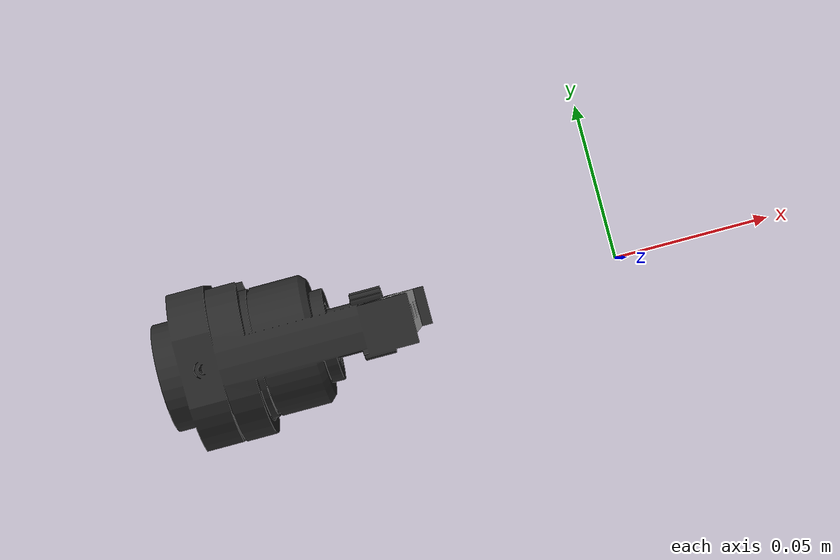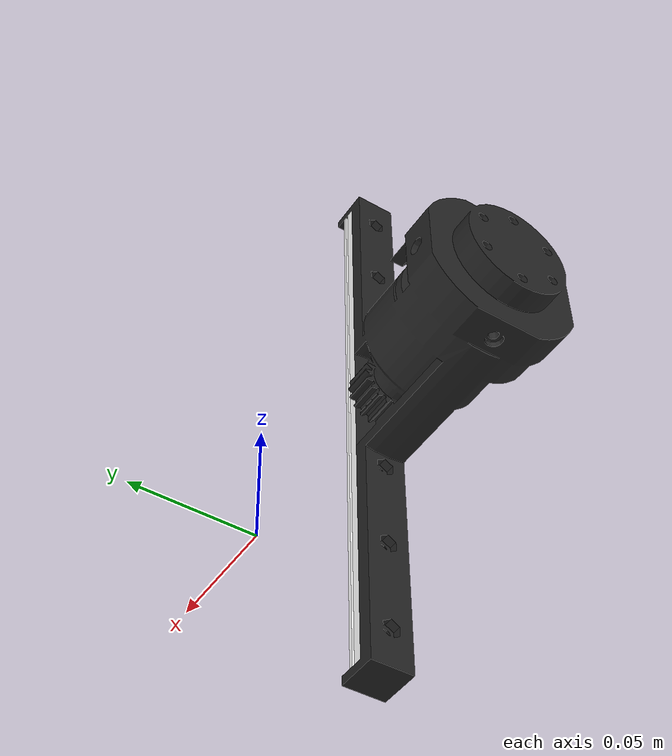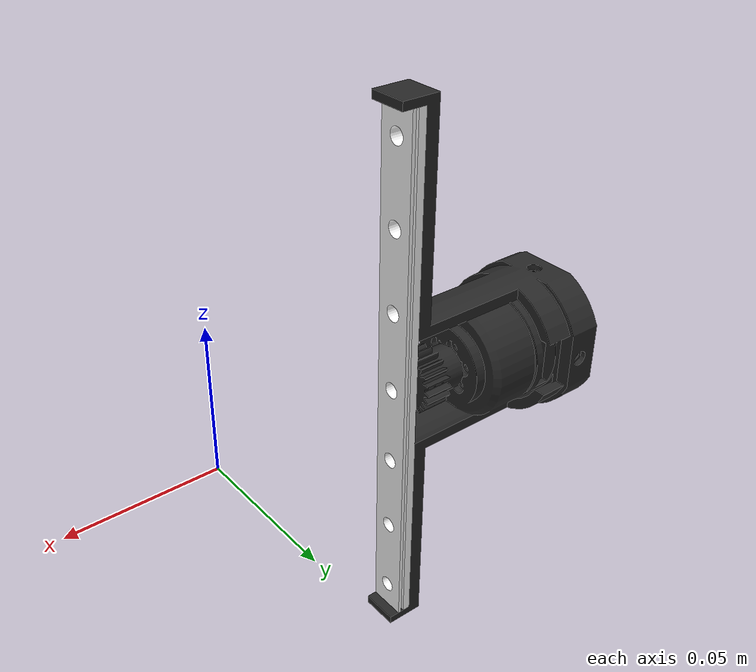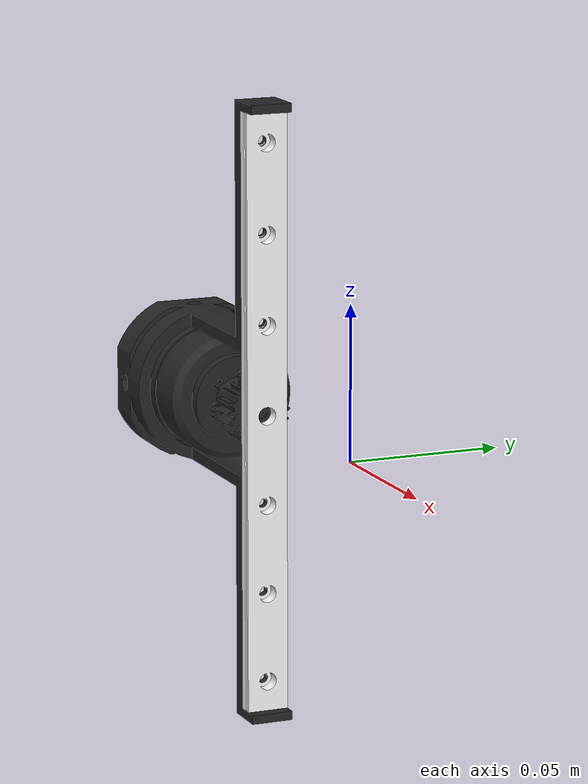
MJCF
<mujoco model="gripper_center_link">
  <default>
    <default class="visual">
      <geom group="2" type="mesh" contype="0" conaffinity="0"/>
    </default>
    <default class="collision">
      <geom group="3" type="mesh"/>
    </default>
  </default>
  <asset>
    <material name="black_shell" specular="0.5" shininess="0.0" rgba="0.150000 0.150000 0.150000 1.000000"/>
    <material name="white_metal.001" specular="0.5" shininess="0.25" rgba="1.000000 1.000000 1.000000 1.000000"/>
    <mesh file="gripper_center_link_0.obj"/>
    <mesh file="gripper_center_link_1.obj"/>
    <mesh file="gripper_center_link_collision_0.obj"/>
    <mesh file="gripper_center_link_collision_1.obj"/>
    <mesh file="gripper_center_link_collision_2.obj"/>
  </asset>
  <worldbody>
    <body name="gripper_center_link">
      <geom mesh="gripper_center_link_0" material="white_metal.001" class="visual"/>
      <geom mesh="gripper_center_link_1" material="black_shell" class="visual"/>
      <geom mesh="gripper_center_link_collision_0" rgba="0.9383067435375235 0.3234054303219127 0.6651239416573249 1" class="collision"/>
      <geom mesh="gripper_center_link_collision_1" rgba="0.3840162291794218 0.5368071184722696 0.4063316875420272 1" class="collision"/>
      <geom mesh="gripper_center_link_collision_2" rgba="0.7240706198949394 0.31717558588299455 0.01340586082919637 1" class="collision"/>
    </body>
  </worldbody>
</mujoco>
